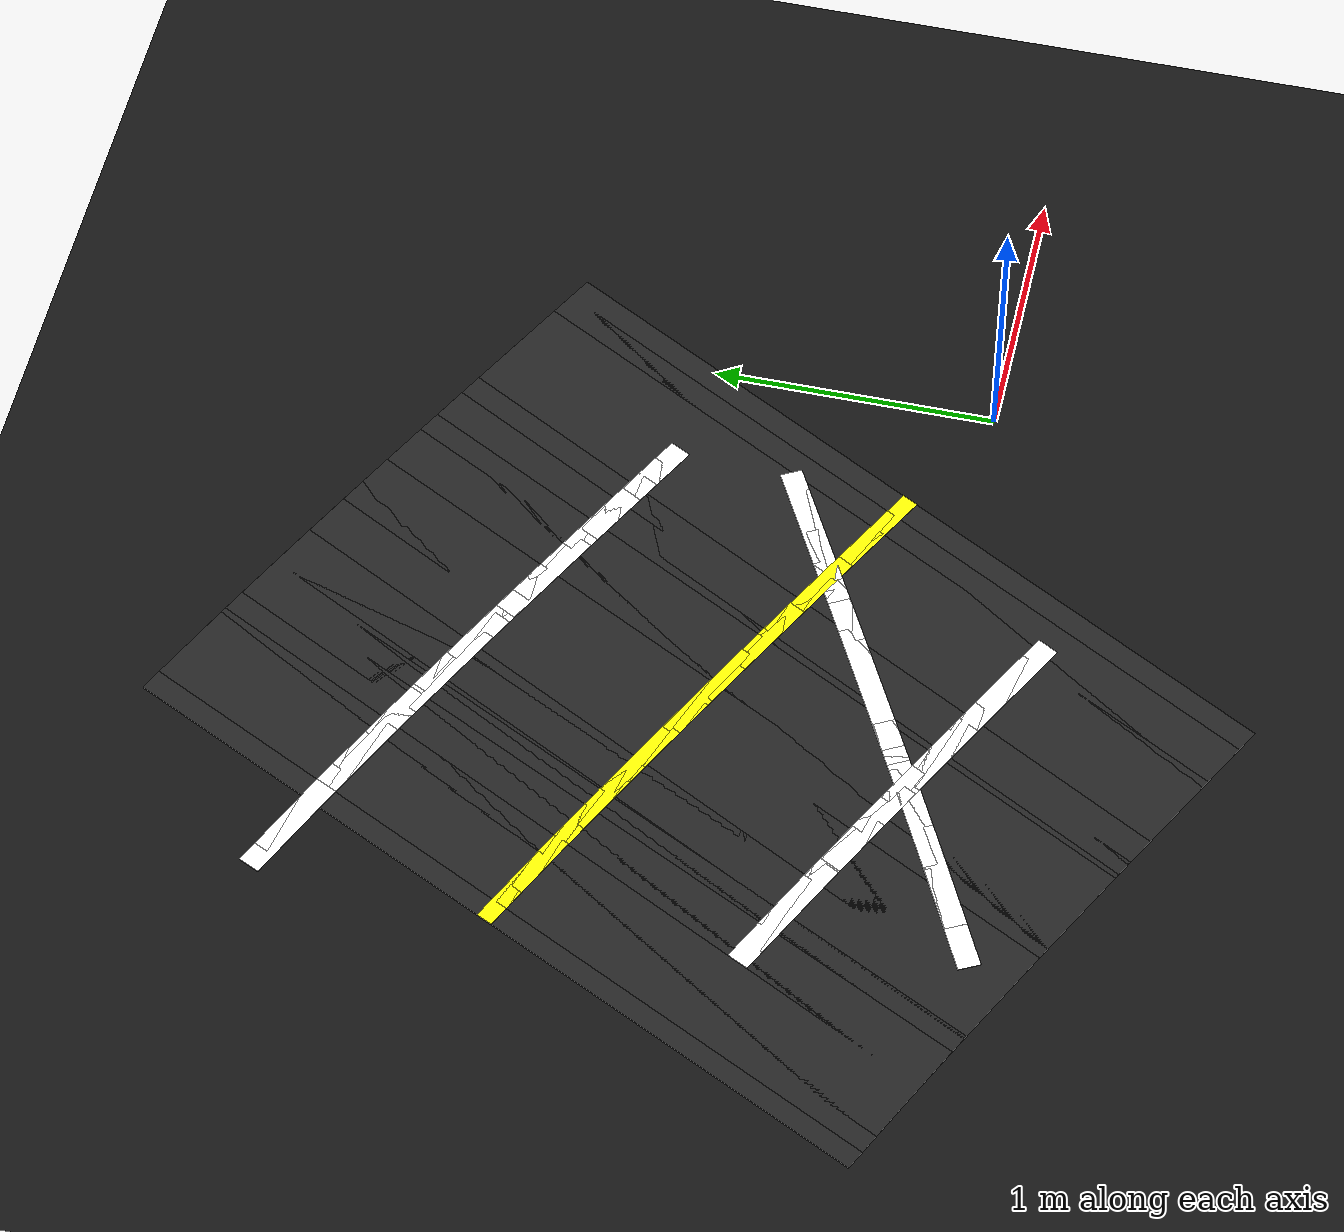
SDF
<sdf version="1.6">
 <world name="figure8_world">
  <model name="ground_plane">
   <static>true</static>
   <link name="link">
    <collision name="collision">
     <geometry><plane><normal>0 0 1</normal><size>120 120</size></plane></geometry>
    </collision>
    <visual name="visual">
     <geometry><plane><normal>0 0 1</normal><size>120 120</size></plane></geometry>
     <material><ambient>0.08 0.08 0.08 1</ambient><diffuse>0.08 0.08 0.08 1</diffuse></material>
    </visual>
   </link>
  </model>
  <model name="seg_01553">
   <static>true</static>
   <pose>-2.1757 1.9749 0.0030 0 0 -0.4333</pose>
   <link name="link">
    <collision name="collision"><geometry><box><size>0.4000 0.0800 0.002</size></box></geometry></collision>
    <visual name="visual">
     <geometry><box><size>0.4000 0.0800 0.002</size></box></geometry>
     <material><ambient>1 1 1 1</ambient><diffuse>1 1 1 1</diffuse></material>
    </visual>
   </link>
  </model>
  <model name="seg_01557">
   <static>true</static>
   <pose>-2.1044 1.9416 0.0030 0 0 -0.4376</pose>
   <link name="link">
    <collision name="collision"><geometry><box><size>0.4000 0.0800 0.002</size></box></geometry></collision>
    <visual name="visual">
     <geometry><box><size>0.4000 0.0800 0.002</size></box></geometry>
     <material><ambient>1 1 1 1</ambient><diffuse>1 1 1 1</diffuse></material>
    </visual>
   </link>
  </model>
  <model name="seg_01561">
   <static>true</static>
   <pose>-2.0328 1.9077 0.0030 0 0 -0.4418</pose>
   <link name="link">
    <collision name="collision"><geometry><box><size>0.4000 0.0800 0.002</size></box></geometry></collision>
    <visual name="visual">
     <geometry><box><size>0.4000 0.0800 0.002</size></box></geometry>
     <material><ambient>1 1 1 1</ambient><diffuse>1 1 1 1</diffuse></material>
    </visual>
   </link>
  </model>
  <model name="seg_01565">
   <static>true</static>
   <pose>-1.9608 1.8733 0.0030 0 0 -0.4458</pose>
   <link name="link">
    <collision name="collision"><geometry><box><size>0.4000 0.0800 0.002</size></box></geometry></collision>
    <visual name="visual">
     <geometry><box><size>0.4000 0.0800 0.002</size></box></geometry>
     <material><ambient>1 1 1 1</ambient><diffuse>1 1 1 1</diffuse></material>
    </visual>
   </link>
  </model>
  <model name="seg_01568">
   <static>true</static>
   <pose>-2.2142 1.1629 0.0010 0 0 -0.4495</pose>
   <link name="link">
    <collision name="collision"><geometry><box><size>0.4000 3.0000 0.002</size></box></geometry></collision>
    <visual name="visual">
     <geometry><box><size>0.4000 3.0000 0.002</size></box></geometry>
     <material><ambient>0.14 0.14 0.14 1</ambient><diffuse>0.14 0.14 0.14 1</diffuse></material>
    </visual>
   </link>
  </model>
  <model name="seg_01569">
   <static>true</static>
   <pose>-1.8883 1.8384 0.0030 0 0 -0.4495</pose>
   <link name="link">
    <collision name="collision"><geometry><box><size>0.4000 0.0800 0.002</size></box></geometry></collision>
    <visual name="visual">
     <geometry><box><size>0.4000 0.0800 0.002</size></box></geometry>
     <material><ambient>1 1 1 1</ambient><diffuse>1 1 1 1</diffuse></material>
    </visual>
   </link>
  </model>
  <model name="seg_01571">
   <static>true</static>
   <pose>-2.2142 1.1629 0.0030 0 0 -0.4495</pose>
   <link name="link">
    <collision name="collision"><geometry><box><size>0.4000 0.0600 0.002</size></box></geometry></collision>
    <visual name="visual">
     <geometry><box><size>0.4000 0.0600 0.002</size></box></geometry>
     <material><ambient>1 1 0 1</ambient><diffuse>1 1 0 1</diffuse></material>
    </visual>
   </link>
  </model>
  <model name="seg_01572">
   <static>true</static>
   <pose>-2.1439 1.1286 0.0010 0 0 -0.4531</pose>
   <link name="link">
    <collision name="collision"><geometry><box><size>0.4000 3.0000 0.002</size></box></geometry></collision>
    <visual name="visual">
     <geometry><box><size>0.4000 3.0000 0.002</size></box></geometry>
     <material><ambient>0.14 0.14 0.14 1</ambient><diffuse>0.14 0.14 0.14 1</diffuse></material>
    </visual>
   </link>
  </model>
  <model name="seg_01573">
   <static>true</static>
   <pose>-1.8156 1.8029 0.0030 0 0 -0.4531</pose>
   <link name="link">
    <collision name="collision"><geometry><box><size>0.4000 0.0800 0.002</size></box></geometry></collision>
    <visual name="visual">
     <geometry><box><size>0.4000 0.0800 0.002</size></box></geometry>
     <material><ambient>1 1 1 1</ambient><diffuse>1 1 1 1</diffuse></material>
    </visual>
   </link>
  </model>
  <model name="seg_01575">
   <static>true</static>
   <pose>-2.1439 1.1286 0.0030 0 0 -0.4531</pose>
   <link name="link">
    <collision name="collision"><geometry><box><size>0.4000 0.0600 0.002</size></box></geometry></collision>
    <visual name="visual">
     <geometry><box><size>0.4000 0.0600 0.002</size></box></geometry>
     <material><ambient>1 1 0 1</ambient><diffuse>1 1 0 1</diffuse></material>
    </visual>
   </link>
  </model>
  <model name="seg_01576">
   <static>true</static>
   <pose>-2.0730 1.0938 0.0010 0 0 -0.4565</pose>
   <link name="link">
    <collision name="collision"><geometry><box><size>0.4000 3.0000 0.002</size></box></geometry></collision>
    <visual name="visual">
     <geometry><box><size>0.4000 3.0000 0.002</size></box></geometry>
     <material><ambient>0.14 0.14 0.14 1</ambient><diffuse>0.14 0.14 0.14 1</diffuse></material>
    </visual>
   </link>
  </model>
  <model name="seg_01577">
   <static>true</static>
   <pose>-1.7424 1.7670 0.0030 0 0 -0.4565</pose>
   <link name="link">
    <collision name="collision"><geometry><box><size>0.4000 0.0800 0.002</size></box></geometry></collision>
    <visual name="visual">
     <geometry><box><size>0.4000 0.0800 0.002</size></box></geometry>
     <material><ambient>1 1 1 1</ambient><diffuse>1 1 1 1</diffuse></material>
    </visual>
   </link>
  </model>
  <model name="seg_01579">
   <static>true</static>
   <pose>-2.0730 1.0938 0.0030 0 0 -0.4565</pose>
   <link name="link">
    <collision name="collision"><geometry><box><size>0.4000 0.0600 0.002</size></box></geometry></collision>
    <visual name="visual">
     <geometry><box><size>0.4000 0.0600 0.002</size></box></geometry>
     <material><ambient>1 1 0 1</ambient><diffuse>1 1 0 1</diffuse></material>
    </visual>
   </link>
  </model>
  <model name="seg_01580">
   <static>true</static>
   <pose>-2.0017 1.0585 0.0010 0 0 -0.4597</pose>
   <link name="link">
    <collision name="collision"><geometry><box><size>0.4000 3.0000 0.002</size></box></geometry></collision>
    <visual name="visual">
     <geometry><box><size>0.4000 3.0000 0.002</size></box></geometry>
     <material><ambient>0.14 0.14 0.14 1</ambient><diffuse>0.14 0.14 0.14 1</diffuse></material>
    </visual>
   </link>
  </model>
  <model name="seg_01581">
   <static>true</static>
   <pose>-1.6689 1.7306 0.0030 0 0 -0.4597</pose>
   <link name="link">
    <collision name="collision"><geometry><box><size>0.4000 0.0800 0.002</size></box></geometry></collision>
    <visual name="visual">
     <geometry><box><size>0.4000 0.0800 0.002</size></box></geometry>
     <material><ambient>1 1 1 1</ambient><diffuse>1 1 1 1</diffuse></material>
    </visual>
   </link>
  </model>
  <model name="seg_01583">
   <static>true</static>
   <pose>-2.0017 1.0585 0.0030 0 0 -0.4597</pose>
   <link name="link">
    <collision name="collision"><geometry><box><size>0.4000 0.0600 0.002</size></box></geometry></collision>
    <visual name="visual">
     <geometry><box><size>0.4000 0.0600 0.002</size></box></geometry>
     <material><ambient>1 1 0 1</ambient><diffuse>1 1 0 1</diffuse></material>
    </visual>
   </link>
  </model>
  <model name="seg_01584">
   <static>true</static>
   <pose>-1.9299 1.0227 0.0010 0 0 -0.4627</pose>
   <link name="link">
    <collision name="collision"><geometry><box><size>0.4000 3.0000 0.002</size></box></geometry></collision>
    <visual name="visual">
     <geometry><box><size>0.4000 3.0000 0.002</size></box></geometry>
     <material><ambient>0.14 0.14 0.14 1</ambient><diffuse>0.14 0.14 0.14 1</diffuse></material>
    </visual>
   </link>
  </model>
  <model name="seg_01585">
   <static>true</static>
   <pose>-1.5951 1.6938 0.0030 0 0 -0.4627</pose>
   <link name="link">
    <collision name="collision"><geometry><box><size>0.4000 0.0800 0.002</size></box></geometry></collision>
    <visual name="visual">
     <geometry><box><size>0.4000 0.0800 0.002</size></box></geometry>
     <material><ambient>1 1 1 1</ambient><diffuse>1 1 1 1</diffuse></material>
    </visual>
   </link>
  </model>
  <model name="seg_01587">
   <static>true</static>
   <pose>-1.9299 1.0227 0.0030 0 0 -0.4627</pose>
   <link name="link">
    <collision name="collision"><geometry><box><size>0.4000 0.0600 0.002</size></box></geometry></collision>
    <visual name="visual">
     <geometry><box><size>0.4000 0.0600 0.002</size></box></geometry>
     <material><ambient>1 1 0 1</ambient><diffuse>1 1 0 1</diffuse></material>
    </visual>
   </link>
  </model>
  <model name="seg_01588">
   <static>true</static>
   <pose>-1.8577 0.9864 0.0010 0 0 -0.4656</pose>
   <link name="link">
    <collision name="collision"><geometry><box><size>0.4000 3.0000 0.002</size></box></geometry></collision>
    <visual name="visual">
     <geometry><box><size>0.4000 3.0000 0.002</size></box></geometry>
     <material><ambient>0.14 0.14 0.14 1</ambient><diffuse>0.14 0.14 0.14 1</diffuse></material>
    </visual>
   </link>
  </model>
  <model name="seg_01589">
   <static>true</static>
   <pose>-1.5210 1.6566 0.0030 0 0 -0.4656</pose>
   <link name="link">
    <collision name="collision"><geometry><box><size>0.4000 0.0800 0.002</size></box></geometry></collision>
    <visual name="visual">
     <geometry><box><size>0.4000 0.0800 0.002</size></box></geometry>
     <material><ambient>1 1 1 1</ambient><diffuse>1 1 1 1</diffuse></material>
    </visual>
   </link>
  </model>
  <model name="seg_01590">
   <static>true</static>
   <pose>-2.1945 0.3163 0.0030 0 0 -0.4656</pose>
   <link name="link">
    <collision name="collision"><geometry><box><size>0.4000 0.0800 0.002</size></box></geometry></collision>
    <visual name="visual">
     <geometry><box><size>0.4000 0.0800 0.002</size></box></geometry>
     <material><ambient>1 1 1 1</ambient><diffuse>1 1 1 1</diffuse></material>
    </visual>
   </link>
  </model>
  <model name="seg_01591">
   <static>true</static>
   <pose>-1.8577 0.9864 0.0030 0 0 -0.4656</pose>
   <link name="link">
    <collision name="collision"><geometry><box><size>0.4000 0.0600 0.002</size></box></geometry></collision>
    <visual name="visual">
     <geometry><box><size>0.4000 0.0600 0.002</size></box></geometry>
     <material><ambient>1 1 0 1</ambient><diffuse>1 1 0 1</diffuse></material>
    </visual>
   </link>
  </model>
  <model name="seg_01592">
   <static>true</static>
   <pose>-1.7851 0.9497 0.0010 0 0 -0.4684</pose>
   <link name="link">
    <collision name="collision"><geometry><box><size>0.4000 3.0000 0.002</size></box></geometry></collision>
    <visual name="visual">
     <geometry><box><size>0.4000 3.0000 0.002</size></box></geometry>
     <material><ambient>0.14 0.14 0.14 1</ambient><diffuse>0.14 0.14 0.14 1</diffuse></material>
    </visual>
   </link>
  </model>
  <model name="seg_01593">
   <static>true</static>
   <pose>-1.4465 1.6189 0.0030 0 0 -0.4684</pose>
   <link name="link">
    <collision name="collision"><geometry><box><size>0.4000 0.0800 0.002</size></box></geometry></collision>
    <visual name="visual">
     <geometry><box><size>0.4000 0.0800 0.002</size></box></geometry>
     <material><ambient>1 1 1 1</ambient><diffuse>1 1 1 1</diffuse></material>
    </visual>
   </link>
  </model>
  <model name="seg_01594">
   <static>true</static>
   <pose>-2.1237 0.2804 0.0030 0 0 -0.4684</pose>
   <link name="link">
    <collision name="collision"><geometry><box><size>0.4000 0.0800 0.002</size></box></geometry></collision>
    <visual name="visual">
     <geometry><box><size>0.4000 0.0800 0.002</size></box></geometry>
     <material><ambient>1 1 1 1</ambient><diffuse>1 1 1 1</diffuse></material>
    </visual>
   </link>
  </model>
  <model name="seg_01595">
   <static>true</static>
   <pose>-1.7851 0.9497 0.0030 0 0 -0.4684</pose>
   <link name="link">
    <collision name="collision"><geometry><box><size>0.4000 0.0600 0.002</size></box></geometry></collision>
    <visual name="visual">
     <geometry><box><size>0.4000 0.0600 0.002</size></box></geometry>
     <material><ambient>1 1 0 1</ambient><diffuse>1 1 0 1</diffuse></material>
    </visual>
   </link>
  </model>
  <model name="seg_01596">
   <static>true</static>
   <pose>-1.7121 0.9125 0.0010 0 0 -0.4709</pose>
   <link name="link">
    <collision name="collision"><geometry><box><size>0.4000 3.0000 0.002</size></box></geometry></collision>
    <visual name="visual">
     <geometry><box><size>0.4000 3.0000 0.002</size></box></geometry>
     <material><ambient>0.14 0.14 0.14 1</ambient><diffuse>0.14 0.14 0.14 1</diffuse></material>
    </visual>
   </link>
  </model>
  <model name="seg_01597">
   <static>true</static>
   <pose>-1.3718 1.5808 0.0030 0 0 -0.4709</pose>
   <link name="link">
    <collision name="collision"><geometry><box><size>0.4000 0.0800 0.002</size></box></geometry></collision>
    <visual name="visual">
     <geometry><box><size>0.4000 0.0800 0.002</size></box></geometry>
     <material><ambient>1 1 1 1</ambient><diffuse>1 1 1 1</diffuse></material>
    </visual>
   </link>
  </model>
  <model name="seg_01598">
   <static>true</static>
   <pose>-2.0524 0.2441 0.0030 0 0 -0.4709</pose>
   <link name="link">
    <collision name="collision"><geometry><box><size>0.4000 0.0800 0.002</size></box></geometry></collision>
    <visual name="visual">
     <geometry><box><size>0.4000 0.0800 0.002</size></box></geometry>
     <material><ambient>1 1 1 1</ambient><diffuse>1 1 1 1</diffuse></material>
    </visual>
   </link>
  </model>
  <model name="seg_01599">
   <static>true</static>
   <pose>-1.7121 0.9125 0.0030 0 0 -0.4709</pose>
   <link name="link">
    <collision name="collision"><geometry><box><size>0.4000 0.0600 0.002</size></box></geometry></collision>
    <visual name="visual">
     <geometry><box><size>0.4000 0.0600 0.002</size></box></geometry>
     <material><ambient>1 1 0 1</ambient><diffuse>1 1 0 1</diffuse></material>
    </visual>
   </link>
  </model>
  <model name="seg_01600">
   <static>true</static>
   <pose>-1.6387 0.8749 0.0010 0 0 -0.4734</pose>
   <link name="link">
    <collision name="collision"><geometry><box><size>0.4000 3.0000 0.002</size></box></geometry></collision>
    <visual name="visual">
     <geometry><box><size>0.4000 3.0000 0.002</size></box></geometry>
     <material><ambient>0.14 0.14 0.14 1</ambient><diffuse>0.14 0.14 0.14 1</diffuse></material>
    </visual>
   </link>
  </model>
  <model name="seg_01601">
   <static>true</static>
   <pose>-1.2967 1.5424 0.0030 0 0 -0.4734</pose>
   <link name="link">
    <collision name="collision"><geometry><box><size>0.4000 0.0800 0.002</size></box></geometry></collision>
    <visual name="visual">
     <geometry><box><size>0.4000 0.0800 0.002</size></box></geometry>
     <material><ambient>1 1 1 1</ambient><diffuse>1 1 1 1</diffuse></material>
    </visual>
   </link>
  </model>
  <model name="seg_01602">
   <static>true</static>
   <pose>-1.9806 0.2074 0.0030 0 0 -0.4734</pose>
   <link name="link">
    <collision name="collision"><geometry><box><size>0.4000 0.0800 0.002</size></box></geometry></collision>
    <visual name="visual">
     <geometry><box><size>0.4000 0.0800 0.002</size></box></geometry>
     <material><ambient>1 1 1 1</ambient><diffuse>1 1 1 1</diffuse></material>
    </visual>
   </link>
  </model>
  <model name="seg_01603">
   <static>true</static>
   <pose>-1.6387 0.8749 0.0030 0 0 -0.4734</pose>
   <link name="link">
    <collision name="collision"><geometry><box><size>0.4000 0.0600 0.002</size></box></geometry></collision>
    <visual name="visual">
     <geometry><box><size>0.4000 0.0600 0.002</size></box></geometry>
     <material><ambient>1 1 0 1</ambient><diffuse>1 1 0 1</diffuse></material>
    </visual>
   </link>
  </model>
  <model name="seg_01604">
   <static>true</static>
   <pose>-1.5649 0.8369 0.0010 0 0 -0.4757</pose>
   <link name="link">
    <collision name="collision"><geometry><box><size>0.4000 3.0000 0.002</size></box></geometry></collision>
    <visual name="visual">
     <geometry><box><size>0.4000 3.0000 0.002</size></box></geometry>
     <material><ambient>0.14 0.14 0.14 1</ambient><diffuse>0.14 0.14 0.14 1</diffuse></material>
    </visual>
   </link>
  </model>
  <model name="seg_01605">
   <static>true</static>
   <pose>-1.2214 1.5036 0.0030 0 0 -0.4757</pose>
   <link name="link">
    <collision name="collision"><geometry><box><size>0.4000 0.0800 0.002</size></box></geometry></collision>
    <visual name="visual">
     <geometry><box><size>0.4000 0.0800 0.002</size></box></geometry>
     <material><ambient>1 1 1 1</ambient><diffuse>1 1 1 1</diffuse></material>
    </visual>
   </link>
  </model>
  <model name="seg_01606">
   <static>true</static>
   <pose>-1.9084 0.1701 0.0030 0 0 -0.4757</pose>
   <link name="link">
    <collision name="collision"><geometry><box><size>0.4000 0.0800 0.002</size></box></geometry></collision>
    <visual name="visual">
     <geometry><box><size>0.4000 0.0800 0.002</size></box></geometry>
     <material><ambient>1 1 1 1</ambient><diffuse>1 1 1 1</diffuse></material>
    </visual>
   </link>
  </model>
  <model name="seg_01607">
   <static>true</static>
   <pose>-1.5649 0.8369 0.0030 0 0 -0.4757</pose>
   <link name="link">
    <collision name="collision"><geometry><box><size>0.4000 0.0600 0.002</size></box></geometry></collision>
    <visual name="visual">
     <geometry><box><size>0.4000 0.0600 0.002</size></box></geometry>
     <material><ambient>1 1 0 1</ambient><diffuse>1 1 0 1</diffuse></material>
    </visual>
   </link>
  </model>
  <model name="seg_01608">
   <static>true</static>
   <pose>-1.4908 0.7985 0.0010 0 0 -0.4779</pose>
   <link name="link">
    <collision name="collision"><geometry><box><size>0.4000 3.0000 0.002</size></box></geometry></collision>
    <visual name="visual">
     <geometry><box><size>0.4000 3.0000 0.002</size></box></geometry>
     <material><ambient>0.14 0.14 0.14 1</ambient><diffuse>0.14 0.14 0.14 1</diffuse></material>
    </visual>
   </link>
  </model>
  <model name="seg_01609">
   <static>true</static>
   <pose>-1.1458 1.4645 0.0030 0 0 -0.4779</pose>
   <link name="link">
    <collision name="collision"><geometry><box><size>0.4000 0.0800 0.002</size></box></geometry></collision>
    <visual name="visual">
     <geometry><box><size>0.4000 0.0800 0.002</size></box></geometry>
     <material><ambient>1 1 1 1</ambient><diffuse>1 1 1 1</diffuse></material>
    </visual>
   </link>
  </model>
  <model name="seg_01610">
   <static>true</static>
   <pose>-1.8357 0.1325 0.0030 0 0 -0.4779</pose>
   <link name="link">
    <collision name="collision"><geometry><box><size>0.4000 0.0800 0.002</size></box></geometry></collision>
    <visual name="visual">
     <geometry><box><size>0.4000 0.0800 0.002</size></box></geometry>
     <material><ambient>1 1 1 1</ambient><diffuse>1 1 1 1</diffuse></material>
    </visual>
   </link>
  </model>
  <model name="seg_01611">
   <static>true</static>
   <pose>-1.4908 0.7985 0.0030 0 0 -0.4779</pose>
   <link name="link">
    <collision name="collision"><geometry><box><size>0.4000 0.0600 0.002</size></box></geometry></collision>
    <visual name="visual">
     <geometry><box><size>0.4000 0.0600 0.002</size></box></geometry>
     <material><ambient>1 1 0 1</ambient><diffuse>1 1 0 1</diffuse></material>
    </visual>
   </link>
  </model>
  <model name="seg_01612">
   <static>true</static>
   <pose>-1.4163 0.7597 0.0010 0 0 -0.4799</pose>
   <link name="link">
    <collision name="collision"><geometry><box><size>0.4000 3.0000 0.002</size></box></geometry></collision>
    <visual name="visual">
     <geometry><box><size>0.4000 3.0000 0.002</size></box></geometry>
     <material><ambient>0.14 0.14 0.14 1</ambient><diffuse>0.14 0.14 0.14 1</diffuse></material>
    </visual>
   </link>
  </model>
  <model name="seg_01613">
   <static>true</static>
   <pose>-1.0700 1.4250 0.0030 0 0 -0.4799</pose>
   <link name="link">
    <collision name="collision"><geometry><box><size>0.4000 0.0800 0.002</size></box></geometry></collision>
    <visual name="visual">
     <geometry><box><size>0.4000 0.0800 0.002</size></box></geometry>
     <material><ambient>1 1 1 1</ambient><diffuse>1 1 1 1</diffuse></material>
    </visual>
   </link>
  </model>
  <model name="seg_01614">
   <static>true</static>
   <pose>-1.7626 0.0945 0.0030 0 0 -0.4799</pose>
   <link name="link">
    <collision name="collision"><geometry><box><size>0.4000 0.0800 0.002</size></box></geometry></collision>
    <visual name="visual">
     <geometry><box><size>0.4000 0.0800 0.002</size></box></geometry>
     <material><ambient>1 1 1 1</ambient><diffuse>1 1 1 1</diffuse></material>
    </visual>
   </link>
  </model>
  <model name="seg_01615">
   <static>true</static>
   <pose>-1.4163 0.7597 0.0030 0 0 -0.4799</pose>
   <link name="link">
    <collision name="collision"><geometry><box><size>0.4000 0.0600 0.002</size></box></geometry></collision>
    <visual name="visual">
     <geometry><box><size>0.4000 0.0600 0.002</size></box></geometry>
     <material><ambient>1 1 0 1</ambient><diffuse>1 1 0 1</diffuse></material>
    </visual>
   </link>
  </model>
  <model name="seg_01616">
   <static>true</static>
   <pose>-1.3415 0.7206 0.0010 0 0 -0.4818</pose>
   <link name="link">
    <collision name="collision"><geometry><box><size>0.4000 3.0000 0.002</size></box></geometry></collision>
    <visual name="visual">
     <geometry><box><size>0.4000 3.0000 0.002</size></box></geometry>
     <material><ambient>0.14 0.14 0.14 1</ambient><diffuse>0.14 0.14 0.14 1</diffuse></material>
    </visual>
   </link>
  </model>
  <model name="seg_01617">
   <static>true</static>
   <pose>-0.9940 1.3852 0.0030 0 0 -0.4818</pose>
   <link name="link">
    <collision name="collision"><geometry><box><size>0.4000 0.0800 0.002</size></box></geometry></collision>
    <visual name="visual">
     <geometry><box><size>0.4000 0.0800 0.002</size></box></geometry>
     <material><ambient>1 1 1 1</ambient><diffuse>1 1 1 1</diffuse></material>
    </visual>
   </link>
  </model>
  <model name="seg_01618">
   <static>true</static>
   <pose>-1.6891 0.0560 0.0030 0 0 -0.4818</pose>
   <link name="link">
    <collision name="collision"><geometry><box><size>0.4000 0.0800 0.002</size></box></geometry></collision>
    <visual name="visual">
     <geometry><box><size>0.4000 0.0800 0.002</size></box></geometry>
     <material><ambient>1 1 1 1</ambient><diffuse>1 1 1 1</diffuse></material>
    </visual>
   </link>
  </model>
  <model name="seg_01619">
   <static>true</static>
   <pose>-1.3415 0.7206 0.0030 0 0 -0.4818</pose>
   <link name="link">
    <collision name="collision"><geometry><box><size>0.4000 0.0600 0.002</size></box></geometry></collision>
    <visual name="visual">
     <geometry><box><size>0.4000 0.0600 0.002</size></box></geometry>
     <material><ambient>1 1 0 1</ambient><diffuse>1 1 0 1</diffuse></material>
    </visual>
   </link>
  </model>
  <model name="seg_01620">
   <static>true</static>
   <pose>-1.2665 0.6812 0.0010 0 0 -0.4836</pose>
   <link name="link">
    <collision name="collision"><geometry><box><size>0.4000 3.0000 0.002</size></box></geometry></collision>
    <visual name="visual">
     <geometry><box><size>0.4000 3.0000 0.002</size></box></geometry>
     <material><ambient>0.14 0.14 0.14 1</ambient><diffuse>0.14 0.14 0.14 1</diffuse></material>
    </visual>
   </link>
  </model>
  <model name="seg_01621">
   <static>true</static>
   <pose>-0.9177 1.3452 0.0030 0 0 -0.4836</pose>
   <link name="link">
    <collision name="collision"><geometry><box><size>0.4000 0.0800 0.002</size></box></geometry></collision>
    <visual name="visual">
     <geometry><box><size>0.4000 0.0800 0.002</size></box></geometry>
     <material><ambient>1 1 1 1</ambient><diffuse>1 1 1 1</diffuse></material>
    </visual>
   </link>
  </model>
  <model name="seg_01622">
   <static>true</static>
   <pose>-1.6152 0.0172 0.0030 0 0 -0.4836</pose>
   <link name="link">
    <collision name="collision"><geometry><box><size>0.4000 0.0800 0.002</size></box></geometry></collision>
    <visual name="visual">
     <geometry><box><size>0.4000 0.0800 0.002</size></box></geometry>
     <material><ambient>1 1 1 1</ambient><diffuse>1 1 1 1</diffuse></material>
    </visual>
   </link>
  </model>
  <model name="seg_01623">
   <static>true</static>
   <pose>-1.2665 0.6812 0.0030 0 0 -0.4836</pose>
   <link name="link">
    <collision name="collision"><geometry><box><size>0.4000 0.0600 0.002</size></box></geometry></collision>
    <visual name="visual">
     <geometry><box><size>0.4000 0.0600 0.002</size></box></geometry>
     <material><ambient>1 1 0 1</ambient><diffuse>1 1 0 1</diffuse></material>
    </visual>
   </link>
  </model>
  <model name="seg_01624">
   <static>true</static>
   <pose>-1.1911 0.6415 0.0010 0 0 -0.4853</pose>
   <link name="link">
    <collision name="collision"><geometry><box><size>0.4000 3.0000 0.002</size></box></geometry></collision>
    <visual name="visual">
     <geometry><box><size>0.4000 3.0000 0.002</size></box></geometry>
     <material><ambient>0.14 0.14 0.14 1</ambient><diffuse>0.14 0.14 0.14 1</diffuse></material>
    </visual>
   </link>
  </model>
  <model name="seg_01625">
   <static>true</static>
   <pose>-0.8413 1.3049 0.0030 0 0 -0.4853</pose>
   <link name="link">
    <collision name="collision"><geometry><box><size>0.4000 0.0800 0.002</size></box></geometry></collision>
    <visual name="visual">
     <geometry><box><size>0.4000 0.0800 0.002</size></box></geometry>
     <material><ambient>1 1 1 1</ambient><diffuse>1 1 1 1</diffuse></material>
    </visual>
   </link>
  </model>
  <model name="seg_01626">
   <static>true</static>
   <pose>-1.5410 -0.0219 0.0030 0 0 -0.4853</pose>
   <link name="link">
    <collision name="collision"><geometry><box><size>0.4000 0.0800 0.002</size></box></geometry></collision>
    <visual name="visual">
     <geometry><box><size>0.4000 0.0800 0.002</size></box></geometry>
     <material><ambient>1 1 1 1</ambient><diffuse>1 1 1 1</diffuse></material>
    </visual>
   </link>
  </model>
  <model name="seg_01627">
   <static>true</static>
   <pose>-1.1911 0.6415 0.0030 0 0 -0.4853</pose>
   <link name="link">
    <collision name="collision"><geometry><box><size>0.4000 0.0600 0.002</size></box></geometry></collision>
    <visual name="visual">
     <geometry><box><size>0.4000 0.0600 0.002</size></box></geometry>
     <material><ambient>1 1 0 1</ambient><diffuse>1 1 0 1</diffuse></material>
    </visual>
   </link>
  </model>
  <model name="seg_01628">
   <static>true</static>
   <pose>-1.1155 0.6014 0.0010 0 0 -0.4869</pose>
   <link name="link">
    <collision name="collision"><geometry><box><size>0.4000 3.0000 0.002</size></box></geometry></collision>
    <visual name="visual">
     <geometry><box><size>0.4000 3.0000 0.002</size></box></geometry>
     <material><ambient>0.14 0.14 0.14 1</ambient><diffuse>0.14 0.14 0.14 1</diffuse></material>
    </visual>
   </link>
  </model>
  <model name="seg_01629">
   <static>true</static>
   <pose>-0.7646 1.2643 0.0030 0 0 -0.4869</pose>
   <link name="link">
    <collision name="collision"><geometry><box><size>0.4000 0.0800 0.002</size></box></geometry></collision>
    <visual name="visual">
     <geometry><box><size>0.4000 0.0800 0.002</size></box></geometry>
     <material><ambient>1 1 1 1</ambient><diffuse>1 1 1 1</diffuse></material>
    </visual>
   </link>
  </model>
  <model name="seg_01630">
   <static>true</static>
   <pose>-1.4664 -0.0614 0.0030 0 0 -0.4869</pose>
   <link name="link">
    <collision name="collision"><geometry><box><size>0.4000 0.0800 0.002</size></box></geometry></collision>
    <visual name="visual">
     <geometry><box><size>0.4000 0.0800 0.002</size></box></geometry>
     <material><ambient>1 1 1 1</ambient><diffuse>1 1 1 1</diffuse></material>
    </visual>
   </link>
  </model>
  <model name="seg_01631">
   <static>true</static>
   <pose>-1.1155 0.6014 0.0030 0 0 -0.4869</pose>
   <link name="link">
    <collision name="collision"><geometry><box><size>0.4000 0.0600 0.002</size></box></geometry></collision>
    <visual name="visual">
     <geometry><box><size>0.4000 0.0600 0.002</size></box></geometry>
     <material><ambient>1 1 0 1</ambient><diffuse>1 1 0 1</diffuse></material>
    </visual>
   </link>
  </model>
  <model name="seg_01632">
   <static>true</static>
   <pose>-1.0396 0.5611 0.0010 0 0 -0.4883</pose>
   <link name="link">
    <collision name="collision"><geometry><box><size>0.4000 3.0000 0.002</size></box></geometry></collision>
    <visual name="visual">
     <geometry><box><size>0.4000 3.0000 0.002</size></box></geometry>
     <material><ambient>0.14 0.14 0.14 1</ambient><diffuse>0.14 0.14 0.14 1</diffuse></material>
    </visual>
   </link>
  </model>
  <model name="seg_01633">
   <static>true</static>
   <pose>-0.6878 1.2235 0.0030 0 0 -0.4883</pose>
   <link name="link">
    <collision name="collision"><geometry><box><size>0.4000 0.0800 0.002</size></box></geometry></collision>
    <visual name="visual">
     <geometry><box><size>0.4000 0.0800 0.002</size></box></geometry>
     <material><ambient>1 1 1 1</ambient><diffuse>1 1 1 1</diffuse></material>
    </visual>
   </link>
  </model>
  <model name="seg_01634">
   <static>true</static>
   <pose>-1.3915 -0.1012 0.0030 0 0 -0.4883</pose>
   <link name="link">
    <collision name="collision"><geometry><box><size>0.4000 0.0800 0.002</size></box></geometry></collision>
    <visual name="visual">
     <geometry><box><size>0.4000 0.0800 0.002</size></box></geometry>
     <material><ambient>1 1 1 1</ambient><diffuse>1 1 1 1</diffuse></material>
    </visual>
   </link>
  </model>
  <model name="seg_01635">
   <static>true</static>
   <pose>-1.0396 0.5611 0.0030 0 0 -0.4883</pose>
   <link name="link">
    <collision name="collision"><geometry><box><size>0.4000 0.0600 0.002</size></box></geometry></collision>
    <visual name="visual">
     <geometry><box><size>0.4000 0.0600 0.002</size></box></geometry>
     <material><ambient>1 1 0 1</ambient><diffuse>1 1 0 1</diffuse></material>
    </visual>
   </link>
  </model>
  <model name="seg_01636">
   <static>true</static>
   <pose>-0.9636 0.5206 0.0010 0 0 -0.4897</pose>
   <link name="link">
    <collision name="collision"><geometry><box><size>0.4000 3.0000 0.002</size></box></geometry></collision>
    <visual name="visual">
     <geometry><box><size>0.4000 3.0000 0.002</size></box></geometry>
     <material><ambient>0.14 0.14 0.14 1</ambient><diffuse>0.14 0.14 0.14 1</diffuse></material>
    </visual>
   </link>
  </model>
  <model name="seg_01637">
   <static>true</static>
   <pose>-0.6108 1.1825 0.0030 0 0 -0.4897</pose>
   <link name="link">
    <collision name="collision"><geometry><box><size>0.4000 0.0800 0.002</size></box></geometry></collision>
    <visual name="visual">
     <geometry><box><size>0.4000 0.0800 0.002</size></box></geometry>
     <material><ambient>1 1 1 1</ambient><diffuse>1 1 1 1</diffuse></material>
    </visual>
   </link>
  </model>
  <model name="seg_01638">
   <static>true</static>
   <pose>-1.3163 -0.1413 0.0030 0 0 -0.4897</pose>
   <link name="link">
    <collision name="collision"><geometry><box><size>0.4000 0.0800 0.002</size></box></geometry></collision>
    <visual name="visual">
     <geometry><box><size>0.4000 0.0800 0.002</size></box></geometry>
     <material><ambient>1 1 1 1</ambient><diffuse>1 1 1 1</diffuse></material>
    </visual>
   </link>
  </model>
  <model name="seg_01639">
   <static>true</static>
   <pose>-0.9636 0.5206 0.0030 0 0 -0.4897</pose>
   <link name="link">
    <collision name="collision"><geometry><box><size>0.4000 0.0600 0.002</size></box></geometry></collision>
    <visual name="visual">
     <geometry><box><size>0.4000 0.0600 0.002</size></box></geometry>
     <material><ambient>1 1 0 1</ambient><diffuse>1 1 0 1</diffuse></material>
    </visual>
   </link>
  </model>
  <model name="seg_01640">
   <static>true</static>
   <pose>-0.8873 0.4798 0.0010 0 0 -0.4909</pose>
   <link name="link">
    <collision name="collision"><geometry><box><size>0.4000 3.0000 0.002</size></box></geometry></collision>
    <visual name="visual">
     <geometry><box><size>0.4000 3.0000 0.002</size></box></geometry>
     <material><ambient>0.14 0.14 0.14 1</ambient><diffuse>0.14 0.14 0.14 1</diffuse></material>
    </visual>
   </link>
  </model>
  <model name="seg_01641">
   <static>true</static>
   <pose>-0.5337 1.1412 0.0030 0 0 -0.4909</pose>
   <link name="link">
    <collision name="collision"><geometry><box><size>0.4000 0.0800 0.002</size></box></geometry></collision>
    <visual name="visual">
     <geometry><box><size>0.4000 0.0800 0.002</size></box></geometry>
     <material><ambient>1 1 1 1</ambient><diffuse>1 1 1 1</diffuse></material>
    </visual>
   </link>
  </model>
  <model name="seg_01642">
   <static>true</static>
   <pose>-1.2408 -0.1816 0.0030 0 0 -0.4909</pose>
   <link name="link">
    <collision name="collision"><geometry><box><size>0.4000 0.0800 0.002</size></box></geometry></collision>
    <visual name="visual">
     <geometry><box><size>0.4000 0.0800 0.002</size></box></geometry>
     <material><ambient>1 1 1 1</ambient><diffuse>1 1 1 1</diffuse></material>
    </visual>
   </link>
  </model>
  <model name="seg_01643">
   <static>true</static>
   <pose>-0.8873 0.4798 0.0030 0 0 -0.4909</pose>
   <link name="link">
    <collision name="collision"><geometry><box><size>0.4000 0.0600 0.002</size></box></geometry></collision>
    <visual name="visual">
     <geometry><box><size>0.4000 0.0600 0.002</size></box></geometry>
     <material><ambient>1 1 0 1</ambient><diffuse>1 1 0 1</diffuse></material>
    </visual>
   </link>
  </model>
  <model name="seg_01644">
   <static>true</static>
   <pose>-0.8108 0.4388 0.0010 0 0 -0.4920</pose>
   <link name="link">
    <collision name="collision"><geometry><box><size>0.4000 3.0000 0.002</size></box></geometry></collision>
    <visual name="visual">
     <geometry><box><size>0.4000 3.0000 0.002</size></box></geometry>
     <material><ambient>0.14 0.14 0.14 1</ambient><diffuse>0.14 0.14 0.14 1</diffuse></material>
    </visual>
   </link>
  </model>
  <model name="seg_01646">
   <static>true</static>
   <pose>-1.1651 -0.2222 0.0030 0 0 -0.4920</pose>
   <link name="link">
    <collision name="collision"><geometry><box><size>0.4000 0.0800 0.002</size></box></geometry></collision>
    <visual name="visual">
     <geometry><box><size>0.4000 0.0800 0.002</size></box></geometry>
     <material><ambient>1 1 1 1</ambient><diffuse>1 1 1 1</diffuse></material>
    </visual>
   </link>
  </model>
  <model name="seg_01647">
   <static>true</static>
   <pose>-0.8108 0.4388 0.0030 0 0 -0.4920</pose>
   <link name="link">
    <collision name="collision"><geometry><box><size>0.4000 0.0600 0.002</size></box></geometry></collision>
    <visual name="visual">
     <geometry><box><size>0.4000 0.0600 0.002</size></box></geometry>
     <material><ambient>1 1 0 1</ambient><diffuse>1 1 0 1</diffuse></material>
    </visual>
   </link>
  </model>
  <model name="seg_01648">
   <static>true</static>
   <pose>-0.7341 0.3976 0.0010 0 0 -0.4930</pose>
   <link name="link">
    <collision name="collision"><geometry><box><size>0.4000 3.0000 0.002</size></box></geometry></collision>
    <visual name="visual">
     <geometry><box><size>0.4000 3.0000 0.002</size></box></geometry>
     <material><ambient>0.14 0.14 0.14 1</ambient><diffuse>0.14 0.14 0.14 1</diffuse></material>
    </visual>
   </link>
  </model>
  <model name="seg_01650">
   <static>true</static>
   <pose>-1.0891 -0.2631 0.0030 0 0 -0.4930</pose>
   <link name="link">
    <collision name="collision"><geometry><box><size>0.4000 0.0800 0.002</size></box></geometry></collision>
    <visual name="visual">
     <geometry><box><size>0.4000 0.0800 0.002</size></box></geometry>
     <material><ambient>1 1 1 1</ambient><diffuse>1 1 1 1</diffuse></material>
    </visual>
   </link>
  </model>
  <model name="seg_01651">
   <static>true</static>
   <pose>-0.7341 0.3976 0.0030 0 0 -0.4930</pose>
   <link name="link">
    <collision name="collision"><geometry><box><size>0.4000 0.0600 0.002</size></box></geometry></collision>
    <visual name="visual">
     <geometry><box><size>0.4000 0.0600 0.002</size></box></geometry>
     <material><ambient>1 1 0 1</ambient><diffuse>1 1 0 1</diffuse></material>
    </visual>
   </link>
  </model>
  <model name="seg_01652">
   <static>true</static>
   <pose>-0.6572 0.3562 0.0010 0 0 -0.4940</pose>
   <link name="link">
    <collision name="collision"><geometry><box><size>0.4000 3.0000 0.002</size></box></geometry></collision>
    <visual name="visual">
     <geometry><box><size>0.4000 3.0000 0.002</size></box></geometry>
     <material><ambient>0.14 0.14 0.14 1</ambient><diffuse>0.14 0.14 0.14 1</diffuse></material>
    </visual>
   </link>
  </model>
  <model name="seg_01655">
   <static>true</static>
   <pose>-0.6572 0.3562 0.0030 0 0 -0.4940</pose>
   <link name="link">
    <collision name="collision"><geometry><box><size>0.4000 0.0600 0.002</size></box></geometry></collision>
    <visual name="visual">
     <geometry><box><size>0.4000 0.0600 0.002</size></box></geometry>
     <material><ambient>1 1 0 1</ambient><diffuse>1 1 0 1</diffuse></material>
    </visual>
   </link>
  </model>
  <model name="seg_01656">
   <static>true</static>
   <pose>-0.5803 0.3147 0.0010 0 0 -0.4948</pose>
   <link name="link">
    <collision name="collision"><geometry><box><size>0.4000 3.0000 0.002</size></box></geometry></collision>
    <visual name="visual">
     <geometry><box><size>0.4000 3.0000 0.002</size></box></geometry>
     <material><ambient>0.14 0.14 0.14 1</ambient><diffuse>0.14 0.14 0.14 1</diffuse></material>
    </visual>
   </link>
  </model>
  <model name="seg_01659">
   <static>true</static>
   <pose>-0.5803 0.3147 0.0030 0 0 -0.4948</pose>
   <link name="link">
    <collision name="collision"><geometry><box><size>0.4000 0.0600 0.002</size></box></geometry></collision>
    <visual name="visual">
     <geometry><box><size>0.4000 0.0600 0.002</size></box></geometry>
     <material><ambient>1 1 0 1</ambient><diffuse>1 1 0 1</diffuse></material>
    </visual>
   </link>
  </model>
  <model name="seg_01953">
   <static>true</static>
   <pose>-2.0524 -0.2441 0.0030 0 0 0.4709</pose>
   <link name="link">
    <collision name="collision"><geometry><box><size>0.4000 0.0800 0.002</size></box></geometry></collision>
    <visual name="visual">
     <geometry><box><size>0.4000 0.0800 0.002</size></box></geometry>
     <material><ambient>1 1 1 1</ambient><diffuse>1 1 1 1</diffuse></material>
    </visual>
   </link>
  </model>
  <model name="seg_01957">
   <static>true</static>
   <pose>-1.9806 -0.2074 0.0030 0 0 0.4734</pose>
   <link name="link">
    <collision name="collision"><geometry><box><size>0.4000 0.0800 0.002</size></box></geometry></collision>
    <visual name="visual">
     <geometry><box><size>0.4000 0.0800 0.002</size></box></geometry>
     <material><ambient>1 1 1 1</ambient><diffuse>1 1 1 1</diffuse></material>
    </visual>
   </link>
  </model>
  <model name="seg_01961">
   <static>true</static>
   <pose>-1.9084 -0.1701 0.0030 0 0 0.4757</pose>
   <link name="link">
    <collision name="collision"><geometry><box><size>0.4000 0.0800 0.002</size></box></geometry></collision>
    <visual name="visual">
     <geometry><box><size>0.4000 0.0800 0.002</size></box></geometry>
     <material><ambient>1 1 1 1</ambient><diffuse>1 1 1 1</diffuse></material>
    </visual>
   </link>
  </model>
  <model name="seg_01965">
   <static>true</static>
   <pose>-1.8357 -0.1325 0.0030 0 0 0.4779</pose>
   <link name="link">
    <collision name="collision"><geometry><box><size>0.4000 0.0800 0.002</size></box></geometry></collision>
    <visual name="visual">
     <geometry><box><size>0.4000 0.0800 0.002</size></box></geometry>
     <material><ambient>1 1 1 1</ambient><diffuse>1 1 1 1</diffuse></material>
    </visual>
   </link>
  </model>
  <model name="seg_01969">
   <static>true</static>
   <pose>-1.7626 -0.0945 0.0030 0 0 0.4799</pose>
   <link name="link">
    <collision name="collision"><geometry><box><size>0.4000 0.0800 0.002</size></box></geometry></collision>
    <visual name="visual">
     <geometry><box><size>0.4000 0.0800 0.002</size></box></geometry>
     <material><ambient>1 1 1 1</ambient><diffuse>1 1 1 1</diffuse></material>
    </visual>
   </link>
  </model>
  <model name="seg_01973">
   <static>true</static>
   <pose>-1.6891 -0.0560 0.0030 0 0 0.4818</pose>
   <link name="link">
    <collision name="collision"><geometry><box><size>0.4000 0.0800 0.002</size></box></geometry></collision>
    <visual name="visual">
     <geometry><box><size>0.4000 0.0800 0.002</size></box></geometry>
     <material><ambient>1 1 1 1</ambient><diffuse>1 1 1 1</diffuse></material>
    </visual>
   </link>
  </model>
  <model name="seg_01977">
   <static>true</static>
   <pose>-1.6152 -0.0172 0.0030 0 0 0.4836</pose>
   <link name="link">
    <collision name="collision"><geometry><box><size>0.4000 0.0800 0.002</size></box></geometry></collision>
    <visual name="visual">
     <geometry><box><size>0.4000 0.0800 0.002</size></box></geometry>
     <material><ambient>1 1 1 1</ambient><diffuse>1 1 1 1</diffuse></material>
    </visual>
   </link>
  </model>
  <model name="seg_01981">
   <static>true</static>
   <pose>-1.5410 0.0219 0.0030 0 0 0.4853</pose>
   <link name="link">
    <collision name="collision"><geometry><box><size>0.4000 0.0800 0.002</size></box></geometry></collision>
    <visual name="visual">
     <geometry><box><size>0.4000 0.0800 0.002</size></box></geometry>
     <material><ambient>1 1 1 1</ambient><diffuse>1 1 1 1</diffuse></material>
    </visual>
   </link>
  </model>
  <model name="seg_01985">
   <static>true</static>
   <pose>-1.4664 0.0614 0.0030 0 0 0.4869</pose>
   <link name="link">
    <collision name="collision"><geometry><box><size>0.4000 0.0800 0.002</size></box></geometry></collision>
    <visual name="visual">
     <geometry><box><size>0.4000 0.0800 0.002</size></box></geometry>
     <material><ambient>1 1 1 1</ambient><diffuse>1 1 1 1</diffuse></material>
    </visual>
   </link>
  </model>
  <model name="seg_01989">
   <static>true</static>
   <pose>-1.3915 0.1012 0.0030 0 0 0.4883</pose>
   <link name="link">
    <collision name="collision"><geometry><box><size>0.4000 0.0800 0.002</size></box></geometry></collision>
    <visual name="visual">
     <geometry><box><size>0.4000 0.0800 0.002</size></box></geometry>
     <material><ambient>1 1 1 1</ambient><diffuse>1 1 1 1</diffuse></material>
    </visual>
   </link>
  </model>
  <model name="seg_01993">
   <static>true</static>
   <pose>-1.3163 0.1413 0.0030 0 0 0.4897</pose>
   <link name="link">
    <collision name="collision"><geometry><box><size>0.4000 0.0800 0.002</size></box></geometry></collision>
    <visual name="visual">
     <geometry><box><size>0.4000 0.0800 0.002</size></box></geometry>
     <material><ambient>1 1 1 1</ambient><diffuse>1 1 1 1</diffuse></material>
    </visual>
   </link>
  </model>
  <model name="seg_01997">
   <static>true</static>
   <pose>-1.2408 0.1816 0.0030 0 0 0.4909</pose>
   <link name="link">
    <collision name="collision"><geometry><box><size>0.4000 0.0800 0.002</size></box></geometry></collision>
    <visual name="visual">
     <geometry><box><size>0.4000 0.0800 0.002</size></box></geometry>
     <material><ambient>1 1 1 1</ambient><diffuse>1 1 1 1</diffuse></material>
    </visual>
   </link>
  </model>
  <model name="seg_02001">
   <static>true</static>
   <pose>-1.1651 0.2222 0.0030 0 0 0.4920</pose>
   <link name="link">
    <collision name="collision"><geometry><box><size>0.4000 0.0800 0.002</size></box></geometry></collision>
    <visual name="visual">
     <geometry><box><size>0.4000 0.0800 0.002</size></box></geometry>
     <material><ambient>1 1 1 1</ambient><diffuse>1 1 1 1</diffuse></material>
    </visual>
   </link>
  </model>
  <model name="seg_02005">
   <static>true</static>
   <pose>-1.0891 0.2631 0.0030 0 0 0.4930</pose>
   <link name="link">
    <collision name="collision"><geometry><box><size>0.4000 0.0800 0.002</size></box></geometry></collision>
    <visual name="visual">
     <geometry><box><size>0.4000 0.0800 0.002</size></box></geometry>
     <material><ambient>1 1 1 1</ambient><diffuse>1 1 1 1</diffuse></material>
    </visual>
   </link>
  </model>
  <model name="seg_02009">
   <static>true</static>
   <pose>-1.0128 0.3041 0.0030 0 0 0.4940</pose>
   <link name="link">
    <collision name="collision"><geometry><box><size>0.4000 0.0800 0.002</size></box></geometry></collision>
    <visual name="visual">
     <geometry><box><size>0.4000 0.0800 0.002</size></box></geometry>
     <material><ambient>1 1 1 1</ambient><diffuse>1 1 1 1</diffuse></material>
    </visual>
   </link>
  </model>
  <model name="seg_02013">
   <static>true</static>
   <pose>-0.9364 0.3454 0.0030 0 0 0.4948</pose>
   <link name="link">
    <collision name="collision"><geometry><box><size>0.4000 0.0800 0.002</size></box></geometry></collision>
    <visual name="visual">
     <geometry><box><size>0.4000 0.0800 0.002</size></box></geometry>
     <material><ambient>1 1 1 1</ambient><diffuse>1 1 1 1</diffuse></material>
    </visual>
   </link>
  </model>
  <model name="seg_02017">
   <static>true</static>
   <pose>-0.8598 0.3868 0.0030 0 0 0.4955</pose>
   <link name="link">
    <collision name="collision"><geometry><box><size>0.4000 0.0800 0.002</size></box></geometry></collision>
    <visual name="visual">
     <geometry><box><size>0.4000 0.0800 0.002</size></box></geometry>
     <material><ambient>1 1 1 1</ambient><diffuse>1 1 1 1</diffuse></material>
    </visual>
   </link>
  </model>
  <model name="seg_02021">
   <static>true</static>
   <pose>-0.7829 0.4284 0.0030 0 0 0.4961</pose>
   <link name="link">
    <collision name="collision"><geometry><box><size>0.4000 0.0800 0.002</size></box></geometry></collision>
    <visual name="visual">
     <geometry><box><size>0.4000 0.0800 0.002</size></box></geometry>
     <material><ambient>1 1 1 1</ambient><diffuse>1 1 1 1</diffuse></material>
    </visual>
   </link>
  </model>
  <model name="seg_02025">
   <static>true</static>
   <pose>-0.7060 0.4701 0.0030 0 0 0.4966</pose>
   <link name="link">
    <collision name="collision"><geometry><box><size>0.4000 0.0800 0.002</size></box></geometry></collision>
    <visual name="visual">
     <geometry><box><size>0.4000 0.0800 0.002</size></box></geometry>
     <material><ambient>1 1 1 1</ambient><diffuse>1 1 1 1</diffuse></material>
    </visual>
   </link>
  </model>
  <model name="seg_02029">
   <static>true</static>
   <pose>-0.6289 0.5119 0.0030 0 0 0.4971</pose>
   <link name="link">
    <collision name="collision"><geometry><box><size>0.4000 0.0800 0.002</size></box></geometry></collision>
    <visual name="visual">
     <geometry><box><size>0.4000 0.0800 0.002</size></box></geometry>
     <material><ambient>1 1 1 1</ambient><diffuse>1 1 1 1</diffuse></material>
    </visual>
   </link>
  </model>
  <model name="seg_02033">
   <static>true</static>
   <pose>-0.5516 0.5538 0.0030 0 0 0.4974</pose>
   <link name="link">
    <collision name="collision"><geometry><box><size>0.4000 0.0800 0.002</size></box></geometry></collision>
    <visual name="visual">
     <geometry><box><size>0.4000 0.0800 0.002</size></box></geometry>
     <material><ambient>1 1 1 1</ambient><diffuse>1 1 1 1</diffuse></material>
    </visual>
   </link>
  </model>
 </world>
</sdf>
